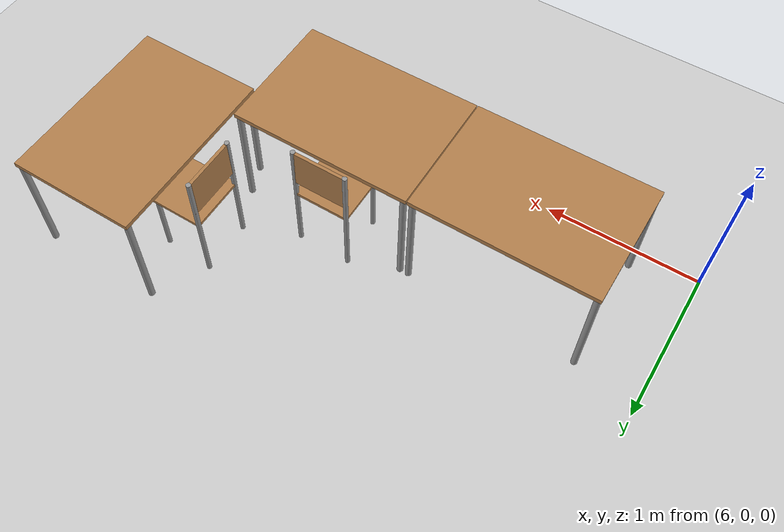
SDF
<sdf version="1.7">
 <world name="default">
  <model name="ground_plane">
   <static>1</static>
   <link name="link">
    <collision name="collision">
     <geometry><plane><normal>0 0 1</normal><size>100 100</size></plane></geometry>
     <surface>
      <contact><collide_bitmask>65535</collide_bitmask></contact>
      <friction><ode><mu>100</mu><mu2>50</mu2></ode></friction>
     </surface>
    </collision>
    <visual name="visual">
     <cast_shadows>0</cast_shadows>
     <geometry><plane><normal>0 0 1</normal><size>100 100</size></plane></geometry>
     <material>
      <script><uri>file://media/materials/scripts/gazebo.material</uri><name>Gazebo/Grey</name></script>
     </material>
    </visual>
   </link>
  </model>
  <model name="table_mod_clone_clone_1">
   <link name="link">
    <inertial>
     <mass>1</mass>
     <inertia><ixx>1</ixx><ixy>0</ixy><ixz>0</ixz><iyy>1</iyy><iyz>0</iyz><izz>1</izz></inertia>
    </inertial>
    <visual name="visual1">
     <pose>0 0 0.87 0 -0 0</pose>
     <geometry><box><size>1.15 0.8 0.03</size></box></geometry>
     <material>
      <script><uri>file://media/materials/scripts/gazebo.material</uri><name>Gazebo/Wood</name></script>
      <shader type="pixel"><normal_map>__default__</normal_map></shader>
      <ambient>1 1 1 1</ambient>
      <diffuse>1 1 1 1</diffuse>
      <specular>0.2 0.2 0.2 1</specular>
      <emissive>0 0 0 1</emissive>
     </material>
    </visual>
    <visual name="back_right_leg">
     <pose>-0.55 -0.38 0.5 0 -0 0</pose>
     <geometry><cylinder><radius>0.02</radius><length>0.75</length></cylinder></geometry>
     <material>
      <script><uri>file://media/materials/scripts/gazebo.material</uri><name>Gazebo/Grey</name></script>
      <shader type="pixel"><normal_map>__default__</normal_map></shader>
      <ambient>0.3 0.3 0.3 1</ambient>
      <diffuse>0.7 0.7 0.7 1</diffuse>
      <specular>0.01 0.01 0.01 1</specular>
      <emissive>0 0 0 1</emissive>
     </material>
    </visual>
    <visual name="front_right_leg">
     <pose>0.55 -0.38 0.5 0 -0 0</pose>
     <geometry><cylinder><radius>0.02</radius><length>0.75</length></cylinder></geometry>
     <material>
      <script><uri>file://media/materials/scripts/gazebo.material</uri><name>Gazebo/Grey</name></script>
      <shader type="pixel"><normal_map>__default__</normal_map></shader>
      <ambient>0.3 0.3 0.3 1</ambient>
      <diffuse>0.7 0.7 0.7 1</diffuse>
      <specular>0.01 0.01 0.01 1</specular>
      <emissive>0 0 0 1</emissive>
     </material>
    </visual>
    <visual name="back_left_leg">
     <pose>-0.55 0.38 0.5 0 -0 0</pose>
     <geometry><cylinder><radius>0.02</radius><length>0.75</length></cylinder></geometry>
     <material>
      <script><uri>file://media/materials/scripts/gazebo.material</uri><name>Gazebo/Grey</name></script>
      <shader type="pixel"><normal_map>__default__</normal_map></shader>
      <ambient>0.3 0.3 0.3 1</ambient>
      <diffuse>0.7 0.7 0.7 1</diffuse>
      <specular>0.01 0.01 0.01 1</specular>
      <emissive>0 0 0 1</emissive>
     </material>
    </visual>
    <visual name="front_left_leg">
     <pose>0.55 0.38 0.5 0 -0 0</pose>
     <geometry><cylinder><radius>0.02</radius><length>0.75</length></cylinder></geometry>
     <material>
      <script><uri>file://media/materials/scripts/gazebo.material</uri><name>Gazebo/Grey</name></script>
      <shader type="pixel"><normal_map>__default__</normal_map></shader>
      <ambient>0.3 0.3 0.3 1</ambient>
      <diffuse>0.7 0.7 0.7 1</diffuse>
      <specular>0.01 0.01 0.01 1</specular>
      <emissive>0 0 0 1</emissive>
     </material>
    </visual>
    <collision name="surface">
     <pose>0 0 0.87 0 -0 0</pose>
     <geometry><box><size>1.15 0.8 0.03</size></box></geometry>
     <surface>
      <friction>
       <ode><mu>0.6</mu><mu2>0.6</mu2><fdir1>0 0 0</fdir1><slip1>0</slip1><slip2>0</slip2></ode>
       <torsional>
        <coefficient>1</coefficient>
        <patch_radius>0</patch_radius>
        <surface_radius>0</surface_radius>
        <use_patch_radius>1</use_patch_radius>
        <ode><slip>0</slip></ode>
       </torsional>
      </friction>
      <bounce><restitution_coefficient>0</restitution_coefficient><threshold>1e+06</threshold></bounce>
      <contact>
       <collide_without_contact>0</collide_without_contact>
       <collide_without_contact_bitmask>1</collide_without_contact_bitmask>
       <collide_bitmask>1</collide_bitmask>
       <ode>
        <soft_cfm>0</soft_cfm>
        <soft_erp>0.2</soft_erp>
        <kp>1e+13</kp>
        <kd>1</kd>
        <max_vel>0.01</max_vel>
        <min_depth>0</min_depth>
       </ode>
       <bullet>
        <split_impulse>1</split_impulse>
        <split_impulse_penetration_threshold>-0.01</split_impulse_penetration_threshold>
        <soft_cfm>0</soft_cfm>
        <soft_erp>0.2</soft_erp>
        <kp>1e+13</kp>
        <kd>1</kd>
       </bullet>
      </contact>
     </surface>
    </collision>
    <collision name="back_right_leg">
     <pose>-0.55 -0.38 0.5 0 -0 0</pose>
     <geometry><cylinder><radius>0.02</radius><length>0.75</length></cylinder></geometry>
     <surface>
      <friction>
       <ode><mu>1</mu><mu2>1</mu2><fdir1>0 0 0</fdir1><slip1>0</slip1><slip2>0</slip2></ode>
       <torsional>
        <coefficient>1</coefficient>
        <patch_radius>0</patch_radius>
        <surface_radius>0</surface_radius>
        <use_patch_radius>1</use_patch_radius>
        <ode><slip>0</slip></ode>
       </torsional>
      </friction>
      <bounce><restitution_coefficient>0</restitution_coefficient><threshold>1e+06</threshold></bounce>
      <contact>
       <collide_without_contact>0</collide_without_contact>
       <collide_without_contact_bitmask>1</collide_without_contact_bitmask>
       <collide_bitmask>1</collide_bitmask>
       <ode>
        <soft_cfm>0</soft_cfm>
        <soft_erp>0.2</soft_erp>
        <kp>1e+13</kp>
        <kd>1</kd>
        <max_vel>0.01</max_vel>
        <min_depth>0</min_depth>
       </ode>
       <bullet>
        <split_impulse>1</split_impulse>
        <split_impulse_penetration_threshold>-0.01</split_impulse_penetration_threshold>
        <soft_cfm>0</soft_cfm>
        <soft_erp>0.2</soft_erp>
        <kp>1e+13</kp>
        <kd>1</kd>
       </bullet>
      </contact>
     </surface>
    </collision>
    <collision name="back_left_leg">
     <pose>-0.55 0.38 0.5 0 -0 0</pose>
     <geometry><cylinder><radius>0.02</radius><length>0.75</length></cylinder></geometry>
     <surface>
      <friction>
       <ode><mu>1</mu><mu2>1</mu2><fdir1>0 0 0</fdir1><slip1>0</slip1><slip2>0</slip2></ode>
       <torsional>
        <coefficient>1</coefficient>
        <patch_radius>0</patch_radius>
        <surface_radius>0</surface_radius>
        <use_patch_radius>1</use_patch_radius>
        <ode><slip>0</slip></ode>
       </torsional>
      </friction>
      <bounce><restitution_coefficient>0</restitution_coefficient><threshold>1e+06</threshold></bounce>
      <contact>
       <collide_without_contact>0</collide_without_contact>
       <collide_without_contact_bitmask>1</collide_without_contact_bitmask>
       <collide_bitmask>1</collide_bitmask>
       <ode>
        <soft_cfm>0</soft_cfm>
        <soft_erp>0.2</soft_erp>
        <kp>1e+13</kp>
        <kd>1</kd>
        <max_vel>0.01</max_vel>
        <min_depth>0</min_depth>
       </ode>
       <bullet>
        <split_impulse>1</split_impulse>
        <split_impulse_penetration_threshold>-0.01</split_impulse_penetration_threshold>
        <soft_cfm>0</soft_cfm>
        <soft_erp>0.2</soft_erp>
        <kp>1e+13</kp>
        <kd>1</kd>
       </bullet>
      </contact>
     </surface>
    </collision>
    <collision name="front_left_leg">
     <pose>0.55 0.38 0.5 0 -0 0</pose>
     <geometry><cylinder><radius>0.02</radius><length>0.75</length></cylinder></geometry>
     <surface>
      <friction>
       <ode><mu>1</mu><mu2>1</mu2><fdir1>0 0 0</fdir1><slip1>0</slip1><slip2>0</slip2></ode>
       <torsional>
        <coefficient>1</coefficient>
        <patch_radius>0</patch_radius>
        <surface_radius>0</surface_radius>
        <use_patch_radius>1</use_patch_radius>
        <ode><slip>0</slip></ode>
       </torsional>
      </friction>
      <bounce><restitution_coefficient>0</restitution_coefficient><threshold>1e+06</threshold></bounce>
      <contact>
       <collide_without_contact>0</collide_without_contact>
       <collide_without_contact_bitmask>1</collide_without_contact_bitmask>
       <collide_bitmask>1</collide_bitmask>
       <ode>
        <soft_cfm>0</soft_cfm>
        <soft_erp>0.2</soft_erp>
        <kp>1e+13</kp>
        <kd>1</kd>
        <max_vel>0.01</max_vel>
        <min_depth>0</min_depth>
       </ode>
       <bullet>
        <split_impulse>1</split_impulse>
        <split_impulse_penetration_threshold>-0.01</split_impulse_penetration_threshold>
        <soft_cfm>0</soft_cfm>
        <soft_erp>0.2</soft_erp>
        <kp>1e+13</kp>
        <kd>1</kd>
       </bullet>
      </contact>
     </surface>
    </collision>
    <collision name="front_right_leg">
     <pose>0.55 -0.38 0.5 0 -0 0</pose>
     <geometry><cylinder><radius>0.02</radius><length>0.75</length></cylinder></geometry>
     <surface>
      <friction>
       <ode><mu>1</mu><mu2>1</mu2><fdir1>0 0 0</fdir1><slip1>0</slip1><slip2>0</slip2></ode>
       <torsional>
        <coefficient>1</coefficient>
        <patch_radius>0</patch_radius>
        <surface_radius>0</surface_radius>
        <use_patch_radius>1</use_patch_radius>
        <ode><slip>0</slip></ode>
       </torsional>
      </friction>
      <bounce><restitution_coefficient>0</restitution_coefficient><threshold>1e+06</threshold></bounce>
      <contact>
       <collide_without_contact>0</collide_without_contact>
       <collide_without_contact_bitmask>1</collide_without_contact_bitmask>
       <collide_bitmask>1</collide_bitmask>
       <ode>
        <soft_cfm>0</soft_cfm>
        <soft_erp>0.2</soft_erp>
        <kp>1e+13</kp>
        <kd>1</kd>
        <max_vel>0.01</max_vel>
        <min_depth>0</min_depth>
       </ode>
       <bullet>
        <split_impulse>1</split_impulse>
        <split_impulse_penetration_threshold>-0.01</split_impulse_penetration_threshold>
        <soft_cfm>0</soft_cfm>
        <soft_erp>0.2</soft_erp>
        <kp>1e+13</kp>
        <kd>1</kd>
       </bullet>
      </contact>
     </surface>
    </collision>
   </link>
   <static>1</static>
   <pose>9.1084 1.25032 -0.134214 0 0 -1.5708</pose>
  </model>
  <model name="table_mod_clone_0_clone_0_clone_clone">
   <link name="link">
    <inertial>
     <mass>1</mass>
     <inertia><ixx>1</ixx><ixy>0</ixy><ixz>0</ixz><iyy>1</iyy><iyz>0</iyz><izz>1</izz></inertia>
    </inertial>
    <visual name="visual1">
     <pose>0 0 0.87 0 -0 0</pose>
     <geometry><box><size>1.15 0.8 0.03</size></box></geometry>
     <material>
      <script><uri>file://media/materials/scripts/gazebo.material</uri><name>Gazebo/Wood</name></script>
      <shader type="pixel"><normal_map>__default__</normal_map></shader>
      <ambient>1 1 1 1</ambient>
      <diffuse>1 1 1 1</diffuse>
      <specular>0.2 0.2 0.2 1</specular>
      <emissive>0 0 0 1</emissive>
     </material>
    </visual>
    <visual name="back_right_leg">
     <pose>-0.55 -0.38 0.5 0 -0 0</pose>
     <geometry><cylinder><radius>0.02</radius><length>0.75</length></cylinder></geometry>
     <material>
      <script><uri>file://media/materials/scripts/gazebo.material</uri><name>Gazebo/Grey</name></script>
      <shader type="pixel"><normal_map>__default__</normal_map></shader>
      <ambient>0.3 0.3 0.3 1</ambient>
      <diffuse>0.7 0.7 0.7 1</diffuse>
      <specular>0.01 0.01 0.01 1</specular>
      <emissive>0 0 0 1</emissive>
     </material>
    </visual>
    <visual name="front_right_leg">
     <pose>0.55 -0.38 0.5 0 -0 0</pose>
     <geometry><cylinder><radius>0.02</radius><length>0.75</length></cylinder></geometry>
     <material>
      <script><uri>file://media/materials/scripts/gazebo.material</uri><name>Gazebo/Grey</name></script>
      <shader type="pixel"><normal_map>__default__</normal_map></shader>
      <ambient>0.3 0.3 0.3 1</ambient>
      <diffuse>0.7 0.7 0.7 1</diffuse>
      <specular>0.01 0.01 0.01 1</specular>
      <emissive>0 0 0 1</emissive>
     </material>
    </visual>
    <visual name="back_left_leg">
     <pose>-0.55 0.38 0.5 0 -0 0</pose>
     <geometry><cylinder><radius>0.02</radius><length>0.75</length></cylinder></geometry>
     <material>
      <script><uri>file://media/materials/scripts/gazebo.material</uri><name>Gazebo/Grey</name></script>
      <shader type="pixel"><normal_map>__default__</normal_map></shader>
      <ambient>0.3 0.3 0.3 1</ambient>
      <diffuse>0.7 0.7 0.7 1</diffuse>
      <specular>0.01 0.01 0.01 1</specular>
      <emissive>0 0 0 1</emissive>
     </material>
    </visual>
    <visual name="front_left_leg">
     <pose>0.55 0.38 0.5 0 -0 0</pose>
     <geometry><cylinder><radius>0.02</radius><length>0.75</length></cylinder></geometry>
     <material>
      <script><uri>file://media/materials/scripts/gazebo.material</uri><name>Gazebo/Grey</name></script>
      <shader type="pixel"><normal_map>__default__</normal_map></shader>
      <ambient>0.3 0.3 0.3 1</ambient>
      <diffuse>0.7 0.7 0.7 1</diffuse>
      <specular>0.01 0.01 0.01 1</specular>
      <emissive>0 0 0 1</emissive>
     </material>
    </visual>
    <collision name="surface">
     <pose>0 0 0.87 0 -0 0</pose>
     <geometry><box><size>1.15 0.8 0.03</size></box></geometry>
     <surface>
      <friction>
       <ode><mu>0.6</mu><mu2>0.6</mu2><fdir1>0 0 0</fdir1><slip1>0</slip1><slip2>0</slip2></ode>
       <torsional>
        <coefficient>1</coefficient>
        <patch_radius>0</patch_radius>
        <surface_radius>0</surface_radius>
        <use_patch_radius>1</use_patch_radius>
        <ode><slip>0</slip></ode>
       </torsional>
      </friction>
      <bounce><restitution_coefficient>0</restitution_coefficient><threshold>1e+06</threshold></bounce>
      <contact>
       <collide_without_contact>0</collide_without_contact>
       <collide_without_contact_bitmask>1</collide_without_contact_bitmask>
       <collide_bitmask>1</collide_bitmask>
       <ode>
        <soft_cfm>0</soft_cfm>
        <soft_erp>0.2</soft_erp>
        <kp>1e+13</kp>
        <kd>1</kd>
        <max_vel>0.01</max_vel>
        <min_depth>0</min_depth>
       </ode>
       <bullet>
        <split_impulse>1</split_impulse>
        <split_impulse_penetration_threshold>-0.01</split_impulse_penetration_threshold>
        <soft_cfm>0</soft_cfm>
        <soft_erp>0.2</soft_erp>
        <kp>1e+13</kp>
        <kd>1</kd>
       </bullet>
      </contact>
     </surface>
    </collision>
    <collision name="back_right_leg">
     <pose>-0.55 -0.38 0.5 0 -0 0</pose>
     <geometry><cylinder><radius>0.02</radius><length>0.75</length></cylinder></geometry>
     <surface>
      <friction>
       <ode><mu>1</mu><mu2>1</mu2><fdir1>0 0 0</fdir1><slip1>0</slip1><slip2>0</slip2></ode>
       <torsional>
        <coefficient>1</coefficient>
        <patch_radius>0</patch_radius>
        <surface_radius>0</surface_radius>
        <use_patch_radius>1</use_patch_radius>
        <ode><slip>0</slip></ode>
       </torsional>
      </friction>
      <bounce><restitution_coefficient>0</restitution_coefficient><threshold>1e+06</threshold></bounce>
      <contact>
       <collide_without_contact>0</collide_without_contact>
       <collide_without_contact_bitmask>1</collide_without_contact_bitmask>
       <collide_bitmask>1</collide_bitmask>
       <ode>
        <soft_cfm>0</soft_cfm>
        <soft_erp>0.2</soft_erp>
        <kp>1e+13</kp>
        <kd>1</kd>
        <max_vel>0.01</max_vel>
        <min_depth>0</min_depth>
       </ode>
       <bullet>
        <split_impulse>1</split_impulse>
        <split_impulse_penetration_threshold>-0.01</split_impulse_penetration_threshold>
        <soft_cfm>0</soft_cfm>
        <soft_erp>0.2</soft_erp>
        <kp>1e+13</kp>
        <kd>1</kd>
       </bullet>
      </contact>
     </surface>
    </collision>
    <collision name="back_left_leg">
     <pose>-0.55 0.38 0.5 0 -0 0</pose>
     <geometry><cylinder><radius>0.02</radius><length>0.75</length></cylinder></geometry>
     <surface>
      <friction>
       <ode><mu>1</mu><mu2>1</mu2><fdir1>0 0 0</fdir1><slip1>0</slip1><slip2>0</slip2></ode>
       <torsional>
        <coefficient>1</coefficient>
        <patch_radius>0</patch_radius>
        <surface_radius>0</surface_radius>
        <use_patch_radius>1</use_patch_radius>
        <ode><slip>0</slip></ode>
       </torsional>
      </friction>
      <bounce><restitution_coefficient>0</restitution_coefficient><threshold>1e+06</threshold></bounce>
      <contact>
       <collide_without_contact>0</collide_without_contact>
       <collide_without_contact_bitmask>1</collide_without_contact_bitmask>
       <collide_bitmask>1</collide_bitmask>
       <ode>
        <soft_cfm>0</soft_cfm>
        <soft_erp>0.2</soft_erp>
        <kp>1e+13</kp>
        <kd>1</kd>
        <max_vel>0.01</max_vel>
        <min_depth>0</min_depth>
       </ode>
       <bullet>
        <split_impulse>1</split_impulse>
        <split_impulse_penetration_threshold>-0.01</split_impulse_penetration_threshold>
        <soft_cfm>0</soft_cfm>
        <soft_erp>0.2</soft_erp>
        <kp>1e+13</kp>
        <kd>1</kd>
       </bullet>
      </contact>
     </surface>
    </collision>
    <collision name="front_left_leg">
     <pose>0.55 0.38 0.5 0 -0 0</pose>
     <geometry><cylinder><radius>0.02</radius><length>0.75</length></cylinder></geometry>
     <surface>
      <friction>
       <ode><mu>1</mu><mu2>1</mu2><fdir1>0 0 0</fdir1><slip1>0</slip1><slip2>0</slip2></ode>
       <torsional>
        <coefficient>1</coefficient>
        <patch_radius>0</patch_radius>
        <surface_radius>0</surface_radius>
        <use_patch_radius>1</use_patch_radius>
        <ode><slip>0</slip></ode>
       </torsional>
      </friction>
      <bounce><restitution_coefficient>0</restitution_coefficient><threshold>1e+06</threshold></bounce>
      <contact>
       <collide_without_contact>0</collide_without_contact>
       <collide_without_contact_bitmask>1</collide_without_contact_bitmask>
       <collide_bitmask>1</collide_bitmask>
       <ode>
        <soft_cfm>0</soft_cfm>
        <soft_erp>0.2</soft_erp>
        <kp>1e+13</kp>
        <kd>1</kd>
        <max_vel>0.01</max_vel>
        <min_depth>0</min_depth>
       </ode>
       <bullet>
        <split_impulse>1</split_impulse>
        <split_impulse_penetration_threshold>-0.01</split_impulse_penetration_threshold>
        <soft_cfm>0</soft_cfm>
        <soft_erp>0.2</soft_erp>
        <kp>1e+13</kp>
        <kd>1</kd>
       </bullet>
      </contact>
     </surface>
    </collision>
    <collision name="front_right_leg">
     <pose>0.55 -0.38 0.5 0 -0 0</pose>
     <geometry><cylinder><radius>0.02</radius><length>0.75</length></cylinder></geometry>
     <surface>
      <friction>
       <ode><mu>1</mu><mu2>1</mu2><fdir1>0 0 0</fdir1><slip1>0</slip1><slip2>0</slip2></ode>
       <torsional>
        <coefficient>1</coefficient>
        <patch_radius>0</patch_radius>
        <surface_radius>0</surface_radius>
        <use_patch_radius>1</use_patch_radius>
        <ode><slip>0</slip></ode>
       </torsional>
      </friction>
      <bounce><restitution_coefficient>0</restitution_coefficient><threshold>1e+06</threshold></bounce>
      <contact>
       <collide_without_contact>0</collide_without_contact>
       <collide_without_contact_bitmask>1</collide_without_contact_bitmask>
       <collide_bitmask>1</collide_bitmask>
       <ode>
        <soft_cfm>0</soft_cfm>
        <soft_erp>0.2</soft_erp>
        <kp>1e+13</kp>
        <kd>1</kd>
        <max_vel>0.01</max_vel>
        <min_depth>0</min_depth>
       </ode>
       <bullet>
        <split_impulse>1</split_impulse>
        <split_impulse_penetration_threshold>-0.01</split_impulse_penetration_threshold>
        <soft_cfm>0</soft_cfm>
        <soft_erp>0.2</soft_erp>
        <kp>1e+13</kp>
        <kd>1</kd>
       </bullet>
      </contact>
     </surface>
    </collision>
   </link>
   <static>1</static>
   <pose>8.11594 0.491905 -0.134214 0 0 -4e-06</pose>
  </model>
  <model name="table_mod_clone_0_clone_0_clone_clone_clone">
   <link name="link">
    <inertial>
     <mass>1</mass>
     <inertia><ixx>1</ixx><ixy>0</ixy><ixz>0</ixz><iyy>1</iyy><iyz>0</iyz><izz>1</izz></inertia>
    </inertial>
    <visual name="visual1">
     <pose>0 0 0.87 0 -0 0</pose>
     <geometry><box><size>1.15 0.8 0.03</size></box></geometry>
     <material>
      <script><uri>file://media/materials/scripts/gazebo.material</uri><name>Gazebo/Wood</name></script>
      <shader type="pixel"><normal_map>__default__</normal_map></shader>
      <ambient>1 1 1 1</ambient>
      <diffuse>1 1 1 1</diffuse>
      <specular>0.2 0.2 0.2 1</specular>
      <emissive>0 0 0 1</emissive>
     </material>
    </visual>
    <visual name="back_right_leg">
     <pose>-0.55 -0.38 0.5 0 -0 0</pose>
     <geometry><cylinder><radius>0.02</radius><length>0.75</length></cylinder></geometry>
     <material>
      <script><uri>file://media/materials/scripts/gazebo.material</uri><name>Gazebo/Grey</name></script>
      <shader type="pixel"><normal_map>__default__</normal_map></shader>
      <ambient>0.3 0.3 0.3 1</ambient>
      <diffuse>0.7 0.7 0.7 1</diffuse>
      <specular>0.01 0.01 0.01 1</specular>
      <emissive>0 0 0 1</emissive>
     </material>
    </visual>
    <visual name="front_right_leg">
     <pose>0.55 -0.38 0.5 0 -0 0</pose>
     <geometry><cylinder><radius>0.02</radius><length>0.75</length></cylinder></geometry>
     <material>
      <script><uri>file://media/materials/scripts/gazebo.material</uri><name>Gazebo/Grey</name></script>
      <shader type="pixel"><normal_map>__default__</normal_map></shader>
      <ambient>0.3 0.3 0.3 1</ambient>
      <diffuse>0.7 0.7 0.7 1</diffuse>
      <specular>0.01 0.01 0.01 1</specular>
      <emissive>0 0 0 1</emissive>
     </material>
    </visual>
    <visual name="back_left_leg">
     <pose>-0.55 0.38 0.5 0 -0 0</pose>
     <geometry><cylinder><radius>0.02</radius><length>0.75</length></cylinder></geometry>
     <material>
      <script><uri>file://media/materials/scripts/gazebo.material</uri><name>Gazebo/Grey</name></script>
      <shader type="pixel"><normal_map>__default__</normal_map></shader>
      <ambient>0.3 0.3 0.3 1</ambient>
      <diffuse>0.7 0.7 0.7 1</diffuse>
      <specular>0.01 0.01 0.01 1</specular>
      <emissive>0 0 0 1</emissive>
     </material>
    </visual>
    <visual name="front_left_leg">
     <pose>0.55 0.38 0.5 0 -0 0</pose>
     <geometry><cylinder><radius>0.02</radius><length>0.75</length></cylinder></geometry>
     <material>
      <script><uri>file://media/materials/scripts/gazebo.material</uri><name>Gazebo/Grey</name></script>
      <shader type="pixel"><normal_map>__default__</normal_map></shader>
      <ambient>0.3 0.3 0.3 1</ambient>
      <diffuse>0.7 0.7 0.7 1</diffuse>
      <specular>0.01 0.01 0.01 1</specular>
      <emissive>0 0 0 1</emissive>
     </material>
    </visual>
    <collision name="surface">
     <pose>0 0 0.87 0 -0 0</pose>
     <geometry><box><size>1.15 0.8 0.03</size></box></geometry>
     <surface>
      <friction>
       <ode><mu>0.6</mu><mu2>0.6</mu2><fdir1>0 0 0</fdir1><slip1>0</slip1><slip2>0</slip2></ode>
       <torsional>
        <coefficient>1</coefficient>
        <patch_radius>0</patch_radius>
        <surface_radius>0</surface_radius>
        <use_patch_radius>1</use_patch_radius>
        <ode><slip>0</slip></ode>
       </torsional>
      </friction>
      <bounce><restitution_coefficient>0</restitution_coefficient><threshold>1e+06</threshold></bounce>
      <contact>
       <collide_without_contact>0</collide_without_contact>
       <collide_without_contact_bitmask>1</collide_without_contact_bitmask>
       <collide_bitmask>1</collide_bitmask>
       <ode>
        <soft_cfm>0</soft_cfm>
        <soft_erp>0.2</soft_erp>
        <kp>1e+13</kp>
        <kd>1</kd>
        <max_vel>0.01</max_vel>
        <min_depth>0</min_depth>
       </ode>
       <bullet>
        <split_impulse>1</split_impulse>
        <split_impulse_penetration_threshold>-0.01</split_impulse_penetration_threshold>
        <soft_cfm>0</soft_cfm>
        <soft_erp>0.2</soft_erp>
        <kp>1e+13</kp>
        <kd>1</kd>
       </bullet>
      </contact>
     </surface>
    </collision>
    <collision name="back_right_leg">
     <pose>-0.55 -0.38 0.5 0 -0 0</pose>
     <geometry><cylinder><radius>0.02</radius><length>0.75</length></cylinder></geometry>
     <surface>
      <friction>
       <ode><mu>1</mu><mu2>1</mu2><fdir1>0 0 0</fdir1><slip1>0</slip1><slip2>0</slip2></ode>
       <torsional>
        <coefficient>1</coefficient>
        <patch_radius>0</patch_radius>
        <surface_radius>0</surface_radius>
        <use_patch_radius>1</use_patch_radius>
        <ode><slip>0</slip></ode>
       </torsional>
      </friction>
      <bounce><restitution_coefficient>0</restitution_coefficient><threshold>1e+06</threshold></bounce>
      <contact>
       <collide_without_contact>0</collide_without_contact>
       <collide_without_contact_bitmask>1</collide_without_contact_bitmask>
       <collide_bitmask>1</collide_bitmask>
       <ode>
        <soft_cfm>0</soft_cfm>
        <soft_erp>0.2</soft_erp>
        <kp>1e+13</kp>
        <kd>1</kd>
        <max_vel>0.01</max_vel>
        <min_depth>0</min_depth>
       </ode>
       <bullet>
        <split_impulse>1</split_impulse>
        <split_impulse_penetration_threshold>-0.01</split_impulse_penetration_threshold>
        <soft_cfm>0</soft_cfm>
        <soft_erp>0.2</soft_erp>
        <kp>1e+13</kp>
        <kd>1</kd>
       </bullet>
      </contact>
     </surface>
    </collision>
    <collision name="back_left_leg">
     <pose>-0.55 0.38 0.5 0 -0 0</pose>
     <geometry><cylinder><radius>0.02</radius><length>0.75</length></cylinder></geometry>
     <surface>
      <friction>
       <ode><mu>1</mu><mu2>1</mu2><fdir1>0 0 0</fdir1><slip1>0</slip1><slip2>0</slip2></ode>
       <torsional>
        <coefficient>1</coefficient>
        <patch_radius>0</patch_radius>
        <surface_radius>0</surface_radius>
        <use_patch_radius>1</use_patch_radius>
        <ode><slip>0</slip></ode>
       </torsional>
      </friction>
      <bounce><restitution_coefficient>0</restitution_coefficient><threshold>1e+06</threshold></bounce>
      <contact>
       <collide_without_contact>0</collide_without_contact>
       <collide_without_contact_bitmask>1</collide_without_contact_bitmask>
       <collide_bitmask>1</collide_bitmask>
       <ode>
        <soft_cfm>0</soft_cfm>
        <soft_erp>0.2</soft_erp>
        <kp>1e+13</kp>
        <kd>1</kd>
        <max_vel>0.01</max_vel>
        <min_depth>0</min_depth>
       </ode>
       <bullet>
        <split_impulse>1</split_impulse>
        <split_impulse_penetration_threshold>-0.01</split_impulse_penetration_threshold>
        <soft_cfm>0</soft_cfm>
        <soft_erp>0.2</soft_erp>
        <kp>1e+13</kp>
        <kd>1</kd>
       </bullet>
      </contact>
     </surface>
    </collision>
    <collision name="front_left_leg">
     <pose>0.55 0.38 0.5 0 -0 0</pose>
     <geometry><cylinder><radius>0.02</radius><length>0.75</length></cylinder></geometry>
     <surface>
      <friction>
       <ode><mu>1</mu><mu2>1</mu2><fdir1>0 0 0</fdir1><slip1>0</slip1><slip2>0</slip2></ode>
       <torsional>
        <coefficient>1</coefficient>
        <patch_radius>0</patch_radius>
        <surface_radius>0</surface_radius>
        <use_patch_radius>1</use_patch_radius>
        <ode><slip>0</slip></ode>
       </torsional>
      </friction>
      <bounce><restitution_coefficient>0</restitution_coefficient><threshold>1e+06</threshold></bounce>
      <contact>
       <collide_without_contact>0</collide_without_contact>
       <collide_without_contact_bitmask>1</collide_without_contact_bitmask>
       <collide_bitmask>1</collide_bitmask>
       <ode>
        <soft_cfm>0</soft_cfm>
        <soft_erp>0.2</soft_erp>
        <kp>1e+13</kp>
        <kd>1</kd>
        <max_vel>0.01</max_vel>
        <min_depth>0</min_depth>
       </ode>
       <bullet>
        <split_impulse>1</split_impulse>
        <split_impulse_penetration_threshold>-0.01</split_impulse_penetration_threshold>
        <soft_cfm>0</soft_cfm>
        <soft_erp>0.2</soft_erp>
        <kp>1e+13</kp>
        <kd>1</kd>
       </bullet>
      </contact>
     </surface>
    </collision>
    <collision name="front_right_leg">
     <pose>0.55 -0.38 0.5 0 -0 0</pose>
     <geometry><cylinder><radius>0.02</radius><length>0.75</length></cylinder></geometry>
     <surface>
      <friction>
       <ode><mu>1</mu><mu2>1</mu2><fdir1>0 0 0</fdir1><slip1>0</slip1><slip2>0</slip2></ode>
       <torsional>
        <coefficient>1</coefficient>
        <patch_radius>0</patch_radius>
        <surface_radius>0</surface_radius>
        <use_patch_radius>1</use_patch_radius>
        <ode><slip>0</slip></ode>
       </torsional>
      </friction>
      <bounce><restitution_coefficient>0</restitution_coefficient><threshold>1e+06</threshold></bounce>
      <contact>
       <collide_without_contact>0</collide_without_contact>
       <collide_without_contact_bitmask>1</collide_without_contact_bitmask>
       <collide_bitmask>1</collide_bitmask>
       <ode>
        <soft_cfm>0</soft_cfm>
        <soft_erp>0.2</soft_erp>
        <kp>1e+13</kp>
        <kd>1</kd>
        <max_vel>0.01</max_vel>
        <min_depth>0</min_depth>
       </ode>
       <bullet>
        <split_impulse>1</split_impulse>
        <split_impulse_penetration_threshold>-0.01</split_impulse_penetration_threshold>
        <soft_cfm>0</soft_cfm>
        <soft_erp>0.2</soft_erp>
        <kp>1e+13</kp>
        <kd>1</kd>
       </bullet>
      </contact>
     </surface>
    </collision>
   </link>
   <static>1</static>
   <pose>6.95863 0.490493 -0.134214 0 0 -4e-06</pose>
  </model>
  <model name="chair_mod_0_clone_2_clone_1_clone_0">
   <link name="link">
    <inertial>
     <mass>1</mass>
     <inertia><ixx>1</ixx><ixy>0</ixy><ixz>0</ixz><iyy>1</iyy><iyz>0</iyz><izz>1</izz></inertia>
    </inertial>
    <visual name="back_right_leg">
     <pose>-0.17 -0.17 0.42 0 -0 0</pose>
     <geometry><cylinder><radius>0.015</radius><length>0.84</length></cylinder></geometry>
     <material>
      <script><uri>file://media/materials/scripts/gazebo.material</uri><name>Gazebo/Grey</name></script>
      <shader type="pixel"><normal_map>__default__</normal_map></shader>
      <ambient>0.3 0.3 0.3 1</ambient>
      <diffuse>0.7 0.7 0.7 1</diffuse>
      <specular>0.01 0.01 0.01 1</specular>
      <emissive>0 0 0 1</emissive>
     </material>
    </visual>
    <visual name="back_left_leg">
     <pose>-0.15 0.15 0.23 0 -0 0</pose>
     <geometry><cylinder><radius>0.015</radius><length>0.46</length></cylinder></geometry>
     <material>
      <script><uri>file://media/materials/scripts/gazebo.material</uri><name>Gazebo/Grey</name></script>
      <shader type="pixel"><normal_map>__default__</normal_map></shader>
      <ambient>0.3 0.3 0.3 1</ambient>
      <diffuse>0.7 0.7 0.7 1</diffuse>
      <specular>0.01 0.01 0.01 1</specular>
      <emissive>0 0 0 1</emissive>
     </material>
    </visual>
    <visual name="visual1">
     <pose>0 0 0.46 0 -0 0</pose>
     <geometry><box><size>0.36 0.36 0.02</size></box></geometry>
     <material>
      <script><uri>file://media/materials/scripts/gazebo.material</uri><name>Gazebo/Wood</name></script>
      <shader type="pixel"><normal_map>__default__</normal_map></shader>
      <ambient>1 1 1 1</ambient>
      <diffuse>1 1 1 1</diffuse>
      <specular>0.2 0.2 0.2 1</specular>
      <emissive>0 0 0 1</emissive>
     </material>
    </visual>
    <visual name="ModelPreview_1::link::visual_5">
     <pose>0 -0.17 0.705 1.56 -0 0</pose>
     <geometry><box><size>0.36 0.26 0.02</size></box></geometry>
     <material>
      <script><uri>file://media/materials/scripts/gazebo.material</uri><name>Gazebo/Wood</name></script>
      <shader type="pixel"><normal_map>__default__</normal_map></shader>
      <ambient>1 1 1 1</ambient>
      <diffuse>1 1 1 1</diffuse>
      <specular>0.2 0.2 0.2 1</specular>
      <emissive>0 0 0 1</emissive>
     </material>
    </visual>
    <visual name="front_left_leg">
     <pose>0.15 0.15 0.23 0 -0 0</pose>
     <geometry><cylinder><radius>0.015</radius><length>0.46</length></cylinder></geometry>
     <material>
      <script><uri>file://media/materials/scripts/gazebo.material</uri><name>Gazebo/Grey</name></script>
      <shader type="pixel"><normal_map>__default__</normal_map></shader>
      <ambient>0.3 0.3 0.3 1</ambient>
      <diffuse>0.7 0.7 0.7 1</diffuse>
      <specular>0.01 0.01 0.01 1</specular>
      <emissive>0 0 0 1</emissive>
     </material>
    </visual>
    <visual name="front_right_leg">
     <pose>0.17 -0.17 0.42 0 -0 0</pose>
     <geometry><cylinder><radius>0.015</radius><length>0.84</length></cylinder></geometry>
     <material>
      <script><uri>file://media/materials/scripts/gazebo.material</uri><name>Gazebo/Grey</name></script>
      <shader type="pixel"><normal_map>__default__</normal_map></shader>
      <ambient>0.3 0.3 0.3 1</ambient>
      <diffuse>0.7 0.7 0.7 1</diffuse>
      <specular>0.01 0.01 0.01 1</specular>
      <emissive>0 0 0 1</emissive>
     </material>
    </visual>
    <collision name="front_right_leg">
     <pose>0.17 -0.17 0.42 0 -0 0</pose>
     <geometry><cylinder><radius>0.015</radius><length>0.84</length></cylinder></geometry>
     <surface>
      <friction>
       <ode><mu>1</mu><mu2>1</mu2><fdir1>0 0 0</fdir1><slip1>0</slip1><slip2>0</slip2></ode>
       <torsional>
        <coefficient>1</coefficient>
        <patch_radius>0</patch_radius>
        <surface_radius>0</surface_radius>
        <use_patch_radius>1</use_patch_radius>
        <ode><slip>0</slip></ode>
       </torsional>
      </friction>
      <bounce><restitution_coefficient>0</restitution_coefficient><threshold>1e+06</threshold></bounce>
      <contact>
       <collide_without_contact>0</collide_without_contact>
       <collide_without_contact_bitmask>1</collide_without_contact_bitmask>
       <collide_bitmask>1</collide_bitmask>
       <ode>
        <soft_cfm>0</soft_cfm>
        <soft_erp>0.2</soft_erp>
        <kp>1e+13</kp>
        <kd>1</kd>
        <max_vel>0.01</max_vel>
        <min_depth>0</min_depth>
       </ode>
       <bullet>
        <split_impulse>1</split_impulse>
        <split_impulse_penetration_threshold>-0.01</split_impulse_penetration_threshold>
        <soft_cfm>0</soft_cfm>
        <soft_erp>0.2</soft_erp>
        <kp>1e+13</kp>
        <kd>1</kd>
       </bullet>
      </contact>
     </surface>
    </collision>
    <collision name="back_right_leg">
     <pose>-0.17 -0.17 0.42 0 -0 0</pose>
     <geometry><cylinder><radius>0.015</radius><length>0.84</length></cylinder></geometry>
     <surface>
      <friction>
       <ode><mu>1</mu><mu2>1</mu2><fdir1>0 0 0</fdir1><slip1>0</slip1><slip2>0</slip2></ode>
       <torsional>
        <coefficient>1</coefficient>
        <patch_radius>0</patch_radius>
        <surface_radius>0</surface_radius>
        <use_patch_radius>1</use_patch_radius>
        <ode><slip>0</slip></ode>
       </torsional>
      </friction>
      <bounce><restitution_coefficient>0</restitution_coefficient><threshold>1e+06</threshold></bounce>
      <contact>
       <collide_without_contact>0</collide_without_contact>
       <collide_without_contact_bitmask>1</collide_without_contact_bitmask>
       <collide_bitmask>1</collide_bitmask>
       <ode>
        <soft_cfm>0</soft_cfm>
        <soft_erp>0.2</soft_erp>
        <kp>1e+13</kp>
        <kd>1</kd>
        <max_vel>0.01</max_vel>
        <min_depth>0</min_depth>
       </ode>
       <bullet>
        <split_impulse>1</split_impulse>
        <split_impulse_penetration_threshold>-0.01</split_impulse_penetration_threshold>
        <soft_cfm>0</soft_cfm>
        <soft_erp>0.2</soft_erp>
        <kp>1e+13</kp>
        <kd>1</kd>
       </bullet>
      </contact>
     </surface>
    </collision>
    <collision name="back_left_leg">
     <pose>-0.15 0.15 0.23 0 -0 0</pose>
     <geometry><cylinder><radius>0.015</radius><length>0.46</length></cylinder></geometry>
     <surface>
      <friction>
       <ode><mu>1</mu><mu2>1</mu2><fdir1>0 0 0</fdir1><slip1>0</slip1><slip2>0</slip2></ode>
       <torsional>
        <coefficient>1</coefficient>
        <patch_radius>0</patch_radius>
        <surface_radius>0</surface_radius>
        <use_patch_radius>1</use_patch_radius>
        <ode><slip>0</slip></ode>
       </torsional>
      </friction>
      <bounce><restitution_coefficient>0</restitution_coefficient><threshold>1e+06</threshold></bounce>
      <contact>
       <collide_without_contact>0</collide_without_contact>
       <collide_without_contact_bitmask>1</collide_without_contact_bitmask>
       <collide_bitmask>1</collide_bitmask>
       <ode>
        <soft_cfm>0</soft_cfm>
        <soft_erp>0.2</soft_erp>
        <kp>1e+13</kp>
        <kd>1</kd>
        <max_vel>0.01</max_vel>
        <min_depth>0</min_depth>
       </ode>
       <bullet>
        <split_impulse>1</split_impulse>
        <split_impulse_penetration_threshold>-0.01</split_impulse_penetration_threshold>
        <soft_cfm>0</soft_cfm>
        <soft_erp>0.2</soft_erp>
        <kp>1e+13</kp>
        <kd>1</kd>
       </bullet>
      </contact>
     </surface>
    </collision>
    <collision name="collision_6">
     <pose>0 -0.17 0.705 1.56 -0 0</pose>
     <geometry><box><size>0.36 0.26 0.03</size></box></geometry>
     <surface>
      <friction>
       <ode><mu>1</mu><mu2>1</mu2><fdir1>0 0 0</fdir1><slip1>0</slip1><slip2>0</slip2></ode>
       <torsional>
        <coefficient>1</coefficient>
        <patch_radius>0</patch_radius>
        <surface_radius>0</surface_radius>
        <use_patch_radius>1</use_patch_radius>
        <ode><slip>0</slip></ode>
       </torsional>
      </friction>
      <bounce><restitution_coefficient>0</restitution_coefficient><threshold>1e+06</threshold></bounce>
      <contact>
       <collide_without_contact>0</collide_without_contact>
       <collide_without_contact_bitmask>1</collide_without_contact_bitmask>
       <collide_bitmask>1</collide_bitmask>
       <ode>
        <soft_cfm>0</soft_cfm>
        <soft_erp>0.2</soft_erp>
        <kp>1e+13</kp>
        <kd>1</kd>
        <max_vel>0.01</max_vel>
        <min_depth>0</min_depth>
       </ode>
       <bullet>
        <split_impulse>1</split_impulse>
        <split_impulse_penetration_threshold>-0.01</split_impulse_penetration_threshold>
        <soft_cfm>0</soft_cfm>
        <soft_erp>0.2</soft_erp>
        <kp>1e+13</kp>
        <kd>1</kd>
       </bullet>
      </contact>
     </surface>
    </collision>
    <collision name="surface">
     <pose>0 0 0.46 0 -0 0</pose>
     <geometry><box><size>0.36 0.36 0.03</size></box></geometry>
     <surface>
      <friction>
       <ode><mu>0.6</mu><mu2>0.6</mu2><fdir1>0 0 0</fdir1><slip1>0</slip1><slip2>0</slip2></ode>
       <torsional>
        <coefficient>1</coefficient>
        <patch_radius>0</patch_radius>
        <surface_radius>0</surface_radius>
        <use_patch_radius>1</use_patch_radius>
        <ode><slip>0</slip></ode>
       </torsional>
      </friction>
      <bounce><restitution_coefficient>0</restitution_coefficient><threshold>1e+06</threshold></bounce>
      <contact>
       <collide_without_contact>0</collide_without_contact>
       <collide_without_contact_bitmask>1</collide_without_contact_bitmask>
       <collide_bitmask>1</collide_bitmask>
       <ode>
        <soft_cfm>0</soft_cfm>
        <soft_erp>0.2</soft_erp>
        <kp>1e+13</kp>
        <kd>1</kd>
        <max_vel>0.01</max_vel>
        <min_depth>0</min_depth>
       </ode>
       <bullet>
        <split_impulse>1</split_impulse>
        <split_impulse_penetration_threshold>-0.01</split_impulse_penetration_threshold>
        <soft_cfm>0</soft_cfm>
        <soft_erp>0.2</soft_erp>
        <kp>1e+13</kp>
        <kd>1</kd>
       </bullet>
      </contact>
     </surface>
    </collision>
    <collision name="front_left_leg">
     <pose>0.15 0.15 0.23 0 -0 0</pose>
     <geometry><cylinder><radius>0.015</radius><length>0.46</length></cylinder></geometry>
     <surface>
      <friction>
       <ode><mu>1</mu><mu2>1</mu2><fdir1>0 0 0</fdir1><slip1>0</slip1><slip2>0</slip2></ode>
       <torsional>
        <coefficient>1</coefficient>
        <patch_radius>0</patch_radius>
        <surface_radius>0</surface_radius>
        <use_patch_radius>1</use_patch_radius>
        <ode><slip>0</slip></ode>
       </torsional>
      </friction>
      <bounce><restitution_coefficient>0</restitution_coefficient><threshold>1e+06</threshold></bounce>
      <contact>
       <collide_without_contact>0</collide_without_contact>
       <collide_without_contact_bitmask>1</collide_without_contact_bitmask>
       <collide_bitmask>1</collide_bitmask>
       <ode>
        <soft_cfm>0</soft_cfm>
        <soft_erp>0.2</soft_erp>
        <kp>1e+13</kp>
        <kd>1</kd>
        <max_vel>0.01</max_vel>
        <min_depth>0</min_depth>
       </ode>
       <bullet>
        <split_impulse>1</split_impulse>
        <split_impulse_penetration_threshold>-0.01</split_impulse_penetration_threshold>
        <soft_cfm>0</soft_cfm>
        <soft_erp>0.2</soft_erp>
        <kp>1e+13</kp>
        <kd>1</kd>
       </bullet>
      </contact>
     </surface>
    </collision>
   </link>
   <static>1</static>
   <pose>8.03469 0.823393 0 0 0 -3.14159</pose>
  </model>
  <model name="chair_mod_0_clone_2_clone_1_clone_1">
   <link name="link">
    <inertial>
     <mass>1</mass>
     <inertia><ixx>1</ixx><ixy>0</ixy><ixz>0</ixz><iyy>1</iyy><iyz>0</iyz><izz>1</izz></inertia>
    </inertial>
    <visual name="back_right_leg">
     <pose>-0.17 -0.17 0.42 0 -0 0</pose>
     <geometry><cylinder><radius>0.015</radius><length>0.84</length></cylinder></geometry>
     <material>
      <script><uri>file://media/materials/scripts/gazebo.material</uri><name>Gazebo/Grey</name></script>
      <shader type="pixel"><normal_map>__default__</normal_map></shader>
      <ambient>0.3 0.3 0.3 1</ambient>
      <diffuse>0.7 0.7 0.7 1</diffuse>
      <specular>0.01 0.01 0.01 1</specular>
      <emissive>0 0 0 1</emissive>
     </material>
    </visual>
    <visual name="back_left_leg">
     <pose>-0.15 0.15 0.23 0 -0 0</pose>
     <geometry><cylinder><radius>0.015</radius><length>0.46</length></cylinder></geometry>
     <material>
      <script><uri>file://media/materials/scripts/gazebo.material</uri><name>Gazebo/Grey</name></script>
      <shader type="pixel"><normal_map>__default__</normal_map></shader>
      <ambient>0.3 0.3 0.3 1</ambient>
      <diffuse>0.7 0.7 0.7 1</diffuse>
      <specular>0.01 0.01 0.01 1</specular>
      <emissive>0 0 0 1</emissive>
     </material>
    </visual>
    <visual name="visual1">
     <pose>0 0 0.46 0 -0 0</pose>
     <geometry><box><size>0.36 0.36 0.02</size></box></geometry>
     <material>
      <script><uri>file://media/materials/scripts/gazebo.material</uri><name>Gazebo/Wood</name></script>
      <shader type="pixel"><normal_map>__default__</normal_map></shader>
      <ambient>1 1 1 1</ambient>
      <diffuse>1 1 1 1</diffuse>
      <specular>0.2 0.2 0.2 1</specular>
      <emissive>0 0 0 1</emissive>
     </material>
    </visual>
    <visual name="ModelPreview_1::link::visual_5">
     <pose>0 -0.17 0.705 1.56 -0 0</pose>
     <geometry><box><size>0.36 0.26 0.02</size></box></geometry>
     <material>
      <script><uri>file://media/materials/scripts/gazebo.material</uri><name>Gazebo/Wood</name></script>
      <shader type="pixel"><normal_map>__default__</normal_map></shader>
      <ambient>1 1 1 1</ambient>
      <diffuse>1 1 1 1</diffuse>
      <specular>0.2 0.2 0.2 1</specular>
      <emissive>0 0 0 1</emissive>
     </material>
    </visual>
    <visual name="front_left_leg">
     <pose>0.15 0.15 0.23 0 -0 0</pose>
     <geometry><cylinder><radius>0.015</radius><length>0.46</length></cylinder></geometry>
     <material>
      <script><uri>file://media/materials/scripts/gazebo.material</uri><name>Gazebo/Grey</name></script>
      <shader type="pixel"><normal_map>__default__</normal_map></shader>
      <ambient>0.3 0.3 0.3 1</ambient>
      <diffuse>0.7 0.7 0.7 1</diffuse>
      <specular>0.01 0.01 0.01 1</specular>
      <emissive>0 0 0 1</emissive>
     </material>
    </visual>
    <visual name="front_right_leg">
     <pose>0.17 -0.17 0.42 0 -0 0</pose>
     <geometry><cylinder><radius>0.015</radius><length>0.84</length></cylinder></geometry>
     <material>
      <script><uri>file://media/materials/scripts/gazebo.material</uri><name>Gazebo/Grey</name></script>
      <shader type="pixel"><normal_map>__default__</normal_map></shader>
      <ambient>0.3 0.3 0.3 1</ambient>
      <diffuse>0.7 0.7 0.7 1</diffuse>
      <specular>0.01 0.01 0.01 1</specular>
      <emissive>0 0 0 1</emissive>
     </material>
    </visual>
    <collision name="front_right_leg">
     <pose>0.17 -0.17 0.42 0 -0 0</pose>
     <geometry><cylinder><radius>0.015</radius><length>0.84</length></cylinder></geometry>
     <surface>
      <friction>
       <ode><mu>1</mu><mu2>1</mu2><fdir1>0 0 0</fdir1><slip1>0</slip1><slip2>0</slip2></ode>
       <torsional>
        <coefficient>1</coefficient>
        <patch_radius>0</patch_radius>
        <surface_radius>0</surface_radius>
        <use_patch_radius>1</use_patch_radius>
        <ode><slip>0</slip></ode>
       </torsional>
      </friction>
      <bounce><restitution_coefficient>0</restitution_coefficient><threshold>1e+06</threshold></bounce>
      <contact>
       <collide_without_contact>0</collide_without_contact>
       <collide_without_contact_bitmask>1</collide_without_contact_bitmask>
       <collide_bitmask>1</collide_bitmask>
       <ode>
        <soft_cfm>0</soft_cfm>
        <soft_erp>0.2</soft_erp>
        <kp>1e+13</kp>
        <kd>1</kd>
        <max_vel>0.01</max_vel>
        <min_depth>0</min_depth>
       </ode>
       <bullet>
        <split_impulse>1</split_impulse>
        <split_impulse_penetration_threshold>-0.01</split_impulse_penetration_threshold>
        <soft_cfm>0</soft_cfm>
        <soft_erp>0.2</soft_erp>
        <kp>1e+13</kp>
        <kd>1</kd>
       </bullet>
      </contact>
     </surface>
    </collision>
    <collision name="back_right_leg">
     <pose>-0.17 -0.17 0.42 0 -0 0</pose>
     <geometry><cylinder><radius>0.015</radius><length>0.84</length></cylinder></geometry>
     <surface>
      <friction>
       <ode><mu>1</mu><mu2>1</mu2><fdir1>0 0 0</fdir1><slip1>0</slip1><slip2>0</slip2></ode>
       <torsional>
        <coefficient>1</coefficient>
        <patch_radius>0</patch_radius>
        <surface_radius>0</surface_radius>
        <use_patch_radius>1</use_patch_radius>
        <ode><slip>0</slip></ode>
       </torsional>
      </friction>
      <bounce><restitution_coefficient>0</restitution_coefficient><threshold>1e+06</threshold></bounce>
      <contact>
       <collide_without_contact>0</collide_without_contact>
       <collide_without_contact_bitmask>1</collide_without_contact_bitmask>
       <collide_bitmask>1</collide_bitmask>
       <ode>
        <soft_cfm>0</soft_cfm>
        <soft_erp>0.2</soft_erp>
        <kp>1e+13</kp>
        <kd>1</kd>
        <max_vel>0.01</max_vel>
        <min_depth>0</min_depth>
       </ode>
       <bullet>
        <split_impulse>1</split_impulse>
        <split_impulse_penetration_threshold>-0.01</split_impulse_penetration_threshold>
        <soft_cfm>0</soft_cfm>
        <soft_erp>0.2</soft_erp>
        <kp>1e+13</kp>
        <kd>1</kd>
       </bullet>
      </contact>
     </surface>
    </collision>
    <collision name="back_left_leg">
     <pose>-0.15 0.15 0.23 0 -0 0</pose>
     <geometry><cylinder><radius>0.015</radius><length>0.46</length></cylinder></geometry>
     <surface>
      <friction>
       <ode><mu>1</mu><mu2>1</mu2><fdir1>0 0 0</fdir1><slip1>0</slip1><slip2>0</slip2></ode>
       <torsional>
        <coefficient>1</coefficient>
        <patch_radius>0</patch_radius>
        <surface_radius>0</surface_radius>
        <use_patch_radius>1</use_patch_radius>
        <ode><slip>0</slip></ode>
       </torsional>
      </friction>
      <bounce><restitution_coefficient>0</restitution_coefficient><threshold>1e+06</threshold></bounce>
      <contact>
       <collide_without_contact>0</collide_without_contact>
       <collide_without_contact_bitmask>1</collide_without_contact_bitmask>
       <collide_bitmask>1</collide_bitmask>
       <ode>
        <soft_cfm>0</soft_cfm>
        <soft_erp>0.2</soft_erp>
        <kp>1e+13</kp>
        <kd>1</kd>
        <max_vel>0.01</max_vel>
        <min_depth>0</min_depth>
       </ode>
       <bullet>
        <split_impulse>1</split_impulse>
        <split_impulse_penetration_threshold>-0.01</split_impulse_penetration_threshold>
        <soft_cfm>0</soft_cfm>
        <soft_erp>0.2</soft_erp>
        <kp>1e+13</kp>
        <kd>1</kd>
       </bullet>
      </contact>
     </surface>
    </collision>
    <collision name="collision_6">
     <pose>0 -0.17 0.705 1.56 -0 0</pose>
     <geometry><box><size>0.36 0.26 0.03</size></box></geometry>
     <surface>
      <friction>
       <ode><mu>1</mu><mu2>1</mu2><fdir1>0 0 0</fdir1><slip1>0</slip1><slip2>0</slip2></ode>
       <torsional>
        <coefficient>1</coefficient>
        <patch_radius>0</patch_radius>
        <surface_radius>0</surface_radius>
        <use_patch_radius>1</use_patch_radius>
        <ode><slip>0</slip></ode>
       </torsional>
      </friction>
      <bounce><restitution_coefficient>0</restitution_coefficient><threshold>1e+06</threshold></bounce>
      <contact>
       <collide_without_contact>0</collide_without_contact>
       <collide_without_contact_bitmask>1</collide_without_contact_bitmask>
       <collide_bitmask>1</collide_bitmask>
       <ode>
        <soft_cfm>0</soft_cfm>
        <soft_erp>0.2</soft_erp>
        <kp>1e+13</kp>
        <kd>1</kd>
        <max_vel>0.01</max_vel>
        <min_depth>0</min_depth>
       </ode>
       <bullet>
        <split_impulse>1</split_impulse>
        <split_impulse_penetration_threshold>-0.01</split_impulse_penetration_threshold>
        <soft_cfm>0</soft_cfm>
        <soft_erp>0.2</soft_erp>
        <kp>1e+13</kp>
        <kd>1</kd>
       </bullet>
      </contact>
     </surface>
    </collision>
    <collision name="surface">
     <pose>0 0 0.46 0 -0 0</pose>
     <geometry><box><size>0.36 0.36 0.03</size></box></geometry>
     <surface>
      <friction>
       <ode><mu>0.6</mu><mu2>0.6</mu2><fdir1>0 0 0</fdir1><slip1>0</slip1><slip2>0</slip2></ode>
       <torsional>
        <coefficient>1</coefficient>
        <patch_radius>0</patch_radius>
        <surface_radius>0</surface_radius>
        <use_patch_radius>1</use_patch_radius>
        <ode><slip>0</slip></ode>
       </torsional>
      </friction>
      <bounce><restitution_coefficient>0</restitution_coefficient><threshold>1e+06</threshold></bounce>
      <contact>
       <collide_without_contact>0</collide_without_contact>
       <collide_without_contact_bitmask>1</collide_without_contact_bitmask>
       <collide_bitmask>1</collide_bitmask>
       <ode>
        <soft_cfm>0</soft_cfm>
        <soft_erp>0.2</soft_erp>
        <kp>1e+13</kp>
        <kd>1</kd>
        <max_vel>0.01</max_vel>
        <min_depth>0</min_depth>
       </ode>
       <bullet>
        <split_impulse>1</split_impulse>
        <split_impulse_penetration_threshold>-0.01</split_impulse_penetration_threshold>
        <soft_cfm>0</soft_cfm>
        <soft_erp>0.2</soft_erp>
        <kp>1e+13</kp>
        <kd>1</kd>
       </bullet>
      </contact>
     </surface>
    </collision>
    <collision name="front_left_leg">
     <pose>0.15 0.15 0.23 0 -0 0</pose>
     <geometry><cylinder><radius>0.015</radius><length>0.46</length></cylinder></geometry>
     <surface>
      <friction>
       <ode><mu>1</mu><mu2>1</mu2><fdir1>0 0 0</fdir1><slip1>0</slip1><slip2>0</slip2></ode>
       <torsional>
        <coefficient>1</coefficient>
        <patch_radius>0</patch_radius>
        <surface_radius>0</surface_radius>
        <use_patch_radius>1</use_patch_radius>
        <ode><slip>0</slip></ode>
       </torsional>
      </friction>
      <bounce><restitution_coefficient>0</restitution_coefficient><threshold>1e+06</threshold></bounce>
      <contact>
       <collide_without_contact>0</collide_without_contact>
       <collide_without_contact_bitmask>1</collide_without_contact_bitmask>
       <collide_bitmask>1</collide_bitmask>
       <ode>
        <soft_cfm>0</soft_cfm>
        <soft_erp>0.2</soft_erp>
        <kp>1e+13</kp>
        <kd>1</kd>
        <max_vel>0.01</max_vel>
        <min_depth>0</min_depth>
       </ode>
       <bullet>
        <split_impulse>1</split_impulse>
        <split_impulse_penetration_threshold>-0.01</split_impulse_penetration_threshold>
        <soft_cfm>0</soft_cfm>
        <soft_erp>0.2</soft_erp>
        <kp>1e+13</kp>
        <kd>1</kd>
       </bullet>
      </contact>
     </surface>
    </collision>
   </link>
   <static>1</static>
   <pose>8.71762 1.30387 0 0 0 -1.57079</pose>
  </model>
 </world>
</sdf>
